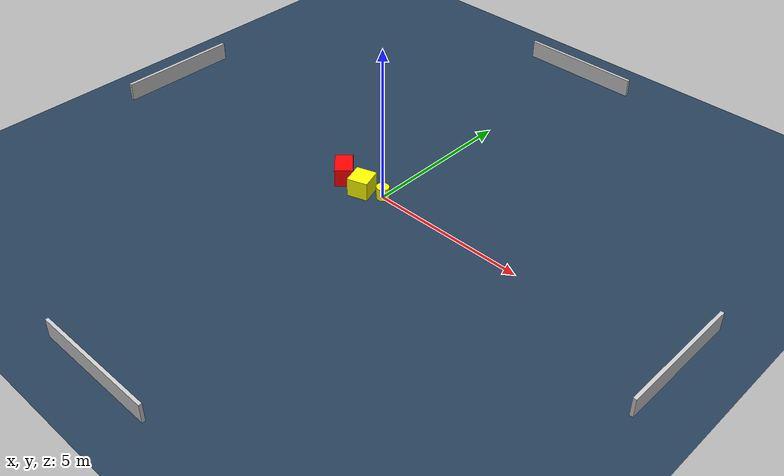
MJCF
<?xml version="1.0" ?>
<mujoco model="generated_environment">
  <option timestep="0.01" integrator="RK4" cone="elliptic"/>
  <default>
    <geom density="1"/>
  </default>
  <asset>
    <texture builtin="gradient" height="3072" name="skybox" rgb1="0.3 0.5 0.7" rgb2="0 0 0" type="skybox" width="512"/>
    <texture builtin="checker" height="300" name="groundplane" rgb1="0.2 0.3 0.4" rgb2="0.1 0.2 0.3" type="2d" width="300"/>
    <material name="groundplane" reflectance="0.2" texrepeat="5 5" texture="groundplane"/>
  </asset>
  <worldbody>
    <light dir="0 0 -1" directional="true" pos="0 0 1.5"/>
    <geom condim="3" friction="0.5 0.005 0.001" material="groundplane" name="floor" pos="0 0 0" size="0 0 0.05" type="plane"/>
    <body name="walls">
      <geom name="wall_1" condim="4" pos="-10.0 0.0 0.3" rgba="0.800000011920929 0.800000011920929 0.800000011920929 1.0" size="0.05 2.0 0.3" type="box"/>
      <geom name="wall_2" condim="4" pos="10.0 0.0 0.3" rgba="0.800000011920929 0.800000011920929 0.800000011920929 1.0" size="0.05 2.0 0.3" type="box"/>
      <geom name="wall_3" condim="4" pos="0.0 -10.0 0.3" rgba="0.800000011920929 0.800000011920929 0.800000011920929 1.0" size="2.0 0.05 0.3" type="box"/>
      <geom name="wall_4" condim="4" pos="0.0 10.0 0.3" rgba="0.800000011920929 0.800000011920929 0.800000011920929 1.0" size="2.0 0.05 0.3" type="box"/>
    </body>
    <body name="robot">
      <joint name="joint_x" type="slide" pos="0 0 0" axis="1 0 0"/>
      <joint name="joint_y" type="slide" pos="0 0 0" axis="0 1 0"/>
      <geom name="robot" type="cylinder" pos="0.0 0.0 0.2" size="0.2 0.2 0.0" mass="5.0" friction="1.0 0.005 0.0001" condim="4" rgba="1.0 1.0 0.0 1.0"/>
    </body>
    <body name="obstacle_1_movable">
      <geom name="obstacle_1_movable" condim="4" pos="-0.6389529497384703 -0.23503345102186685 0.3" euler="0 0 18.22175031392046" friction="0.0 0.005 0.001" rgba="1.0 1.0 0.0 1.0" size="0.3292920654888981 0.34205377499539635 0.3" type="box" mass="0.1"/>
      <joint type="free"/>
    </body>
    <body name="obstacle_2_static">
      <geom name="obstacle_2_static" condim="4" pos="-1.5045502858170063 -0.1467828711315852 0.3" euler="0 0 134.45537922534723" friction="0.0 0.005 0.001" rgba="1.0 0.0 0.0 1.0" size="0.4063209744819425 0.2762567264085093 0.3" type="box"/>
    </body>
  </worldbody>
  <actuator>
    <motor name="actuator_x" joint="joint_x" gear="1" ctrlrange="-1 1"/>
    <motor name="actuator_y" joint="joint_y" gear="1" ctrlrange="-1 1"/>
  </actuator>
</mujoco>
